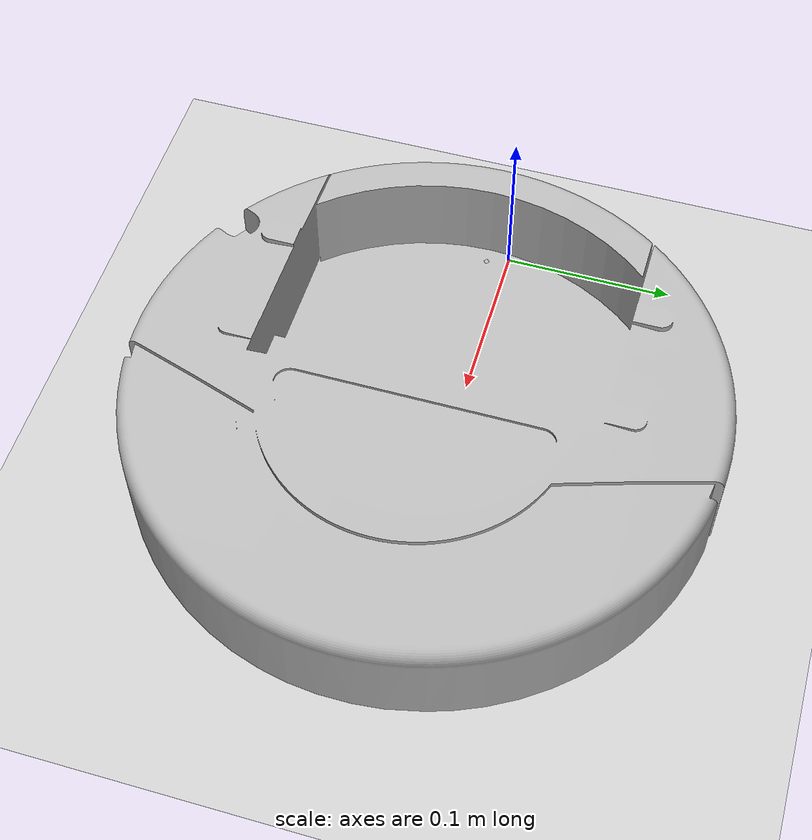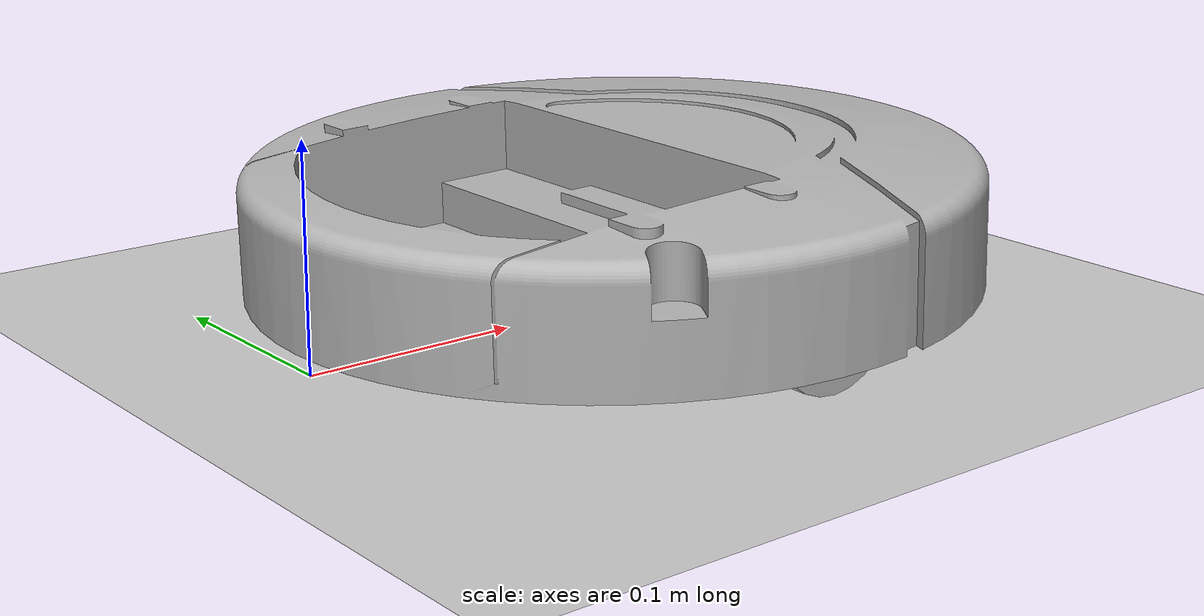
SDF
<sdf version="1.6">
 <world name="default">
  <light name="sun" type="directional">
   <pose>0 0 10 0 -0 0</pose>
   <diffuse>0.8 0.8 0.8 1</diffuse>
   <specular>0.2 0.2 0.2 1</specular>
   <attenuation>
    <range>1000</range>
    <constant>0.9</constant>
    <linear>0.01</linear>
    <quadratic>0.001</quadratic>
   </attenuation>
   <direction>-0.5 0.1 -0.9</direction>
  </light>
  <model name="ground_plane">
   <static>1</static>
   <link name="link">
    <collision name="collision">
     <geometry><plane><normal>0 0 1</normal><size>100 100</size></plane></geometry>
     <surface>
      <contact><collide_bitmask>65535</collide_bitmask></contact>
      <friction><ode><mu>100</mu><mu2>50</mu2></ode></friction>
     </surface>
    </collision>
    <visual name="visual">
     <cast_shadows>0</cast_shadows>
     <geometry><plane><normal>0 0 1</normal><size>100 100</size></plane></geometry>
     <material>
      <script><uri>file://media/materials/scripts/gazebo.material</uri><name>Gazebo/Grey</name></script>
     </material>
    </visual>
   </link>
  </model>
  <gravity>0 0 -9.8</gravity>
  <magnetic_field>6e-06 2.3e-05 -4.2e-05</magnetic_field>
  <atmosphere type="adiabatic"/>
  <physics name="default_physics" default="0" type="ode">
   <max_step_size>0.001</max_step_size>
   <real_time_factor>1</real_time_factor>
   <real_time_update_rate>1000</real_time_update_rate>
  </physics>
  <scene><ambient>0.4 0.4 0.4 1</ambient><background>0.7 0.7 0.7 1</background><shadows>1</shadows></scene>
  <spherical_coordinates>
   <surface_model>EARTH_WGS84</surface_model>
   <latitude_deg>0</latitude_deg>
   <longitude_deg>0</longitude_deg>
   <elevation>0</elevation>
   <heading_deg>0</heading_deg>
  </spherical_coordinates>
  <model name="turtlebot">
   <link name="create::base">
    <inertial>
     <pose>0.001453 -0.000453 0.029787 0 -0 0</pose>
     <inertia><ixx>0.0</ixx><ixy>0.0</ixy><ixz>0.0</ixz><iyy>0.0</iyy><iyz>0.0</iyz><izz>0.0</izz></inertia>
     <mass>100</mass>
    </inertial>
    <collision name="base_collision">
     <pose>0 0 0.0478 0 -0 0</pose>
     <geometry><cylinder><radius>0.016495</radius><length>0.061163</length></cylinder></geometry>
    </collision>
    <visual name="base_visual">
     <pose>0 0 0.0478 0 -0 0</pose>
     <geometry><mesh><uri>model://create/meshes/create_body.dae</uri></mesh></geometry>
    </visual>
    <collision name="front_wheel_collision">
     <pose>0.13 0 0.017 -0 1.5707 1.5707</pose>
     <geometry><sphere><radius>0.018</radius></sphere></geometry>
     <surface>
      <friction><ode><mu>0</mu><mu2>0</mu2><fdir1>0 0 0</fdir1><slip1>0</slip1><slip2>0</slip2></ode></friction>
     </surface>
    </collision>
    <visual name="front_wheel_visual">
     <pose>0.13 0 0.017 -0 1.5707 1.5707</pose>
     <geometry><sphere><radius>0.009</radius></sphere></geometry>
    </visual>
    <collision name="rear_wheel_collision">
     <pose>-0.13 0 0.017 -0 1.5707 1.5707</pose>
     <geometry><sphere><radius>0.015</radius></sphere></geometry>
     <surface>
      <friction><ode><mu>0</mu><mu2>0</mu2><fdir1>0 0 0</fdir1><slip1>0</slip1><slip2>0</slip2></ode></friction>
     </surface>
    </collision>
    <visual name="rear_wheel_visual">
     <pose>-0.13 0 0.017 -0 1.5707 1.5707</pose>
     <geometry><sphere><radius>0.0075</radius></sphere></geometry>
    </visual>
    <sensor name="left_cliff_sensor" type="ray">
     <pose>0.07 0.14 0.027 0 1.57079 0</pose>
     <ray>
      <scan>
       <horizontal>
        <samples>1</samples>
        <resolution>1</resolution>
        <min_angle>0</min_angle>
        <max_angle>0</max_angle>
       </horizontal>
       <vertical><samples>1</samples><min_angle>0</min_angle><max_angle>0</max_angle></vertical>
      </scan>
      <range><min>0.01</min><max>0.04</max><resolution>0.1</resolution></range>
     </ray>
    </sensor>
    <sensor name="leftfront_cliff_sensor" type="ray">
     <pose>0.15 0.04 0.027 0 1.57079 0</pose>
     <ray>
      <scan>
       <horizontal>
        <samples>1</samples>
        <resolution>1</resolution>
        <min_angle>0</min_angle>
        <max_angle>0</max_angle>
       </horizontal>
       <vertical><samples>1</samples><min_angle>0</min_angle><max_angle>0</max_angle></vertical>
      </scan>
      <range><min>0.01</min><max>0.04</max><resolution>0.1</resolution></range>
     </ray>
    </sensor>
    <sensor name="right_cliff_sensor" type="ray">
     <pose>0.07 -0.14 0.027 0 1.57079 0</pose>
     <ray>
      <scan>
       <horizontal>
        <samples>1</samples>
        <resolution>1</resolution>
        <min_angle>0</min_angle>
        <max_angle>0</max_angle>
       </horizontal>
       <vertical><samples>1</samples><min_angle>0</min_angle><max_angle>0</max_angle></vertical>
      </scan>
      <range><min>0.01</min><max>0.04</max><resolution>0.1</resolution></range>
     </ray>
    </sensor>
    <sensor name="rightfront_cliff_sensor" type="ray">
     <pose>0.15 -0.04 0.027 0 1.57079 0</pose>
     <ray>
      <scan>
       <horizontal>
        <samples>1</samples>
        <resolution>1</resolution>
        <min_angle>0</min_angle>
        <max_angle>0</max_angle>
       </horizontal>
       <vertical><samples>1</samples><min_angle>0</min_angle><max_angle>0</max_angle></vertical>
      </scan>
      <range><min>0.01</min><max>0.04</max><resolution>0.1</resolution></range>
     </ray>
    </sensor>
    <sensor name="wall_sensor" type="ray">
     <pose>0.09 -0.12 0.059 0 0 -1</pose>
     <ray>
      <scan>
       <horizontal>
        <samples>1</samples>
        <resolution>1</resolution>
        <min_angle>0</min_angle>
        <max_angle>0</max_angle>
       </horizontal>
       <vertical><samples>1</samples><min_angle>0</min_angle><max_angle>0</max_angle></vertical>
      </scan>
      <range><min>0.016</min><max>0.04</max><resolution>0.1</resolution></range>
     </ray>
    </sensor>
   </link>
   <link name="create::left_wheel">
    <pose>0 0.13 0.032 0 -0 0</pose>
    <inertial>
     <inertia><ixx>0.0</ixx><ixy>0</ixy><ixz>0</ixz><iyy>0.0</iyy><iyz>0</iyz><izz>0.0</izz></inertia>
     <mass>0.01</mass>
    </inertial>
    <collision name="collision">
     <pose>0 0 0 -0 1.5707 1.5707</pose>
     <geometry><cylinder><radius>0.033</radius><length>0.023</length></cylinder></geometry>
     <surface>
      <friction><ode><mu>10</mu><mu2>10</mu2><fdir1>0 0 0</fdir1><slip1>0</slip1><slip2>0</slip2></ode></friction>
     </surface>
    </collision>
    <visual name="visual">
     <pose>0 0 0 -0 1.5707 1.5707</pose>
     <geometry><cylinder><radius>0.033</radius><length>0.023</length></cylinder></geometry>
    </visual>
   </link>
   <link name="create::right_wheel">
    <pose>0 -0.13 0.032 0 -0 0</pose>
    <inertial>
     <inertia><ixx>0.00</ixx><ixy>0</ixy><ixz>0</ixz><iyy>0.00</iyy><iyz>0</iyz><izz>0.00</izz></inertia>
     <mass>0.01</mass>
    </inertial>
    <collision name="collision">
     <pose>0 0 0 -0 1.5707 1.5707</pose>
     <geometry><cylinder><radius>0.033</radius><length>0.023</length></cylinder></geometry>
     <surface>
      <friction><ode><mu>10</mu><mu2>10</mu2><fdir1>0 0 0</fdir1><slip1>0</slip1><slip2>0</slip2></ode></friction>
     </surface>
    </collision>
    <visual name="visual">
     <pose>0 0 0 -0 1.5707 1.5707</pose>
     <geometry><cylinder><radius>0.033</radius><length>0.023</length></cylinder></geometry>
    </visual>
   </link>
   <joint name="create::left_wheel" type="revolute">
    <parent>create::base</parent>
    <child>create::left_wheel</child>
    <axis>
     <xyz>0 1 0</xyz>
     <use_parent_model_frame>1</use_parent_model_frame>
     <limit><lower>-1e+16</lower><upper>1e+16</upper></limit>
     <dynamics><spring_reference>0</spring_reference><spring_stiffness>0</spring_stiffness></dynamics>
    </axis>
   </joint>
   <joint name="create::right_wheel" type="revolute">
    <parent>create::base</parent>
    <child>create::right_wheel</child>
    <axis>
     <xyz>0 1 0</xyz>
     <use_parent_model_frame>1</use_parent_model_frame>
     <limit><lower>-1e+16</lower><upper>1e+16</upper></limit>
     <dynamics><spring_reference>0</spring_reference><spring_stiffness>0</spring_stiffness></dynamics>
    </axis>
   </joint>
   <pose>0.153306 -0.009049 0.000818 -0.000164 -0.021459 -0.000599</pose>
   <plugin name="kobuki_drive" filename="libgazebo_kobuki_drive.so">
    <ros><argument>cmd_vel:=cmd_vel</argument><argument>odom:=robot_pose</argument></ros>
    <left_joint>create::left_wheel</left_joint>
    <right_joint>create::right_wheel</right_joint>
    <wheel_separation>1.25</wheel_separation>
    <wheel_diameter>0.6</wheel_diameter>
    <max_wheel_torque>20</max_wheel_torque>
    <max_wheel_acceleration>1.0</max_wheel_acceleration>
    <publish_odom>true</publish_odom>
    <publish_odom_tf>true</publish_odom_tf>
    <publish_wheel_tf>true</publish_wheel_tf>
    <odometry_frame>odom_demo</odometry_frame>
    <robot_base_frame>create::base</robot_base_frame>
   </plugin>
  </model>
 </world>
</sdf>
